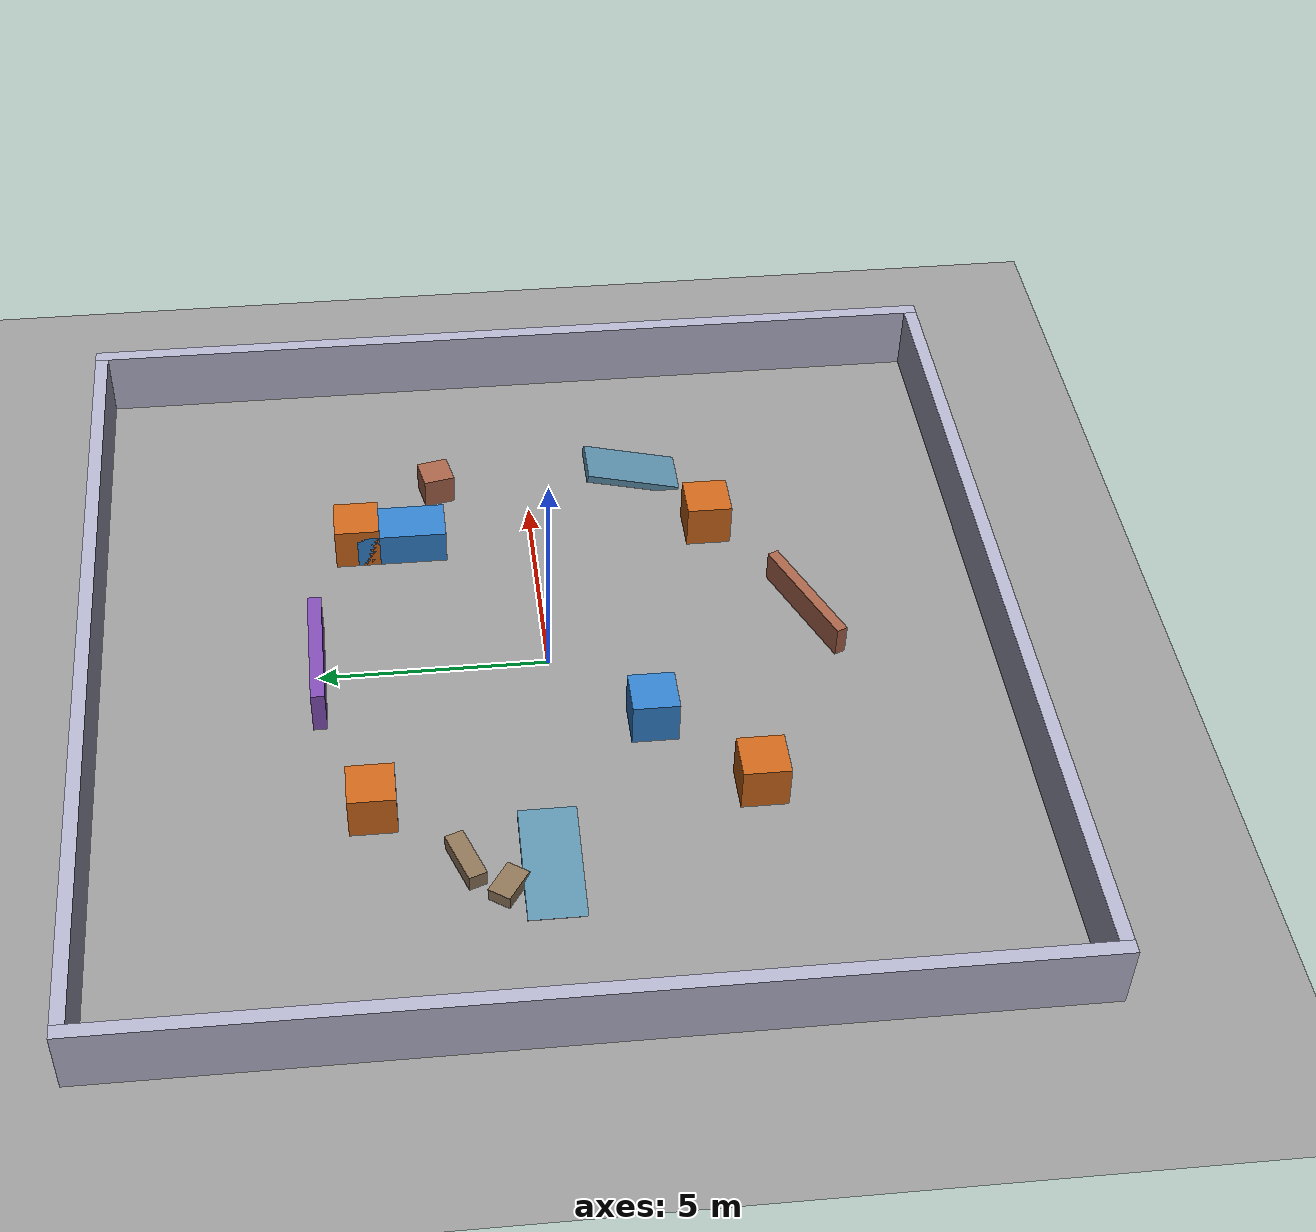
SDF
<?xml version="1.0" ?>
<sdf version="1.9">
  <world name="stage_a">

    <!-- ===== Physics ===== -->
    <physics name="1ms" type="ode">
      <max_step_size>0.001</max_step_size>
      <real_time_factor>1.0</real_time_factor>
      <real_time_update_rate>1000</real_time_update_rate>
    </physics>

    <!-- ===== Required Ignition system plugins ===== -->
    <plugin
      filename="ignition-gazebo-physics-system"
      name="ignition::gazebo::systems::Physics" />
    <plugin
      filename="ignition-gazebo-user-commands-system"
      name="ignition::gazebo::systems::UserCommands" />
    <plugin
      filename="ignition-gazebo-scene-broadcaster-system"
      name="ignition::gazebo::systems::SceneBroadcaster" />
    <plugin
      filename="ignition-gazebo-sensors-system"
      name="ignition::gazebo::systems::Sensors">
      <render_engine>ogre2</render_engine>
    </plugin>

    <!-- ===== Lighting ===== -->
    <light type="directional" name="sun">
      <cast_shadows>true</cast_shadows>
      <pose>0 0 20 0 0 0</pose>
      <diffuse>0.9 0.9 0.9 1</diffuse>
      <specular>0.3 0.3 0.3 1</specular>
      <direction>-0.5 0.2 -0.9</direction>
      <attenuation>
        <range>1000</range>
        <constant>0.9</constant>
        <linear>0.01</linear>
        <quadratic>0.001</quadratic>
      </attenuation>
    </light>
    <!-- Ambient fill: Fortress has no "ambient" light type; use a dim point light -->
    <light type="point" name="ambient_fill">
      <pose>0 0 15 0 0 0</pose>
      <diffuse>0.4 0.4 0.4 1</diffuse>
      <specular>0.1 0.1 0.1 1</specular>
      <attenuation>
        <range>50</range>
        <constant>0.9</constant>
        <linear>0.01</linear>
        <quadratic>0.001</quadratic>
      </attenuation>
      <cast_shadows>false</cast_shadows>
    </light>

    <!-- ===== Ground plane ===== -->
    <model name="ground_plane">
      <static>true</static>
      <link name="link">
        <collision name="collision">
          <geometry>
            <plane>
              <normal>0 0 1</normal>
              <size>30 30</size>
            </plane>
          </geometry>
          <surface>
            <friction>
              <ode>
                <mu>0.8</mu>
                <mu2>0.8</mu2>
              </ode>
            </friction>
          </surface>
        </collision>
        <visual name="visual">
          <geometry>
            <plane>
              <normal>0 0 1</normal>
              <size>30 30</size>
            </plane>
          </geometry>
          <material>
            <ambient>0.5 0.5 0.5 1</ambient>
            <diffuse>0.6 0.6 0.6 1</diffuse>
          </material>
        </visual>
      </link>
    </model>

    <!-- ===== Boundary walls ===== -->
    <!-- West wall  (x = -9.85) -->
    <model name="wall_west">
      <static>true</static>
      <pose>-9.85 0 0.75 0 0 0</pose>
      <link name="link">
        <collision name="collision">
          <geometry><box><size>0.30 20.0 1.5</size></box></geometry>
        </collision>
        <visual name="visual">
          <geometry><box><size>0.30 20.0 1.5</size></box></geometry>
          <material><ambient>0.7 0.7 0.8 1</ambient><diffuse>0.7 0.7 0.8 1</diffuse></material>
        </visual>
      </link>
    </model>

    <!-- East wall  (x = +9.85) -->
    <model name="wall_east">
      <static>true</static>
      <pose>9.85 0 0.75 0 0 0</pose>
      <link name="link">
        <collision name="collision">
          <geometry><box><size>0.30 20.0 1.5</size></box></geometry>
        </collision>
        <visual name="visual">
          <geometry><box><size>0.30 20.0 1.5</size></box></geometry>
          <material><ambient>0.7 0.7 0.8 1</ambient><diffuse>0.7 0.7 0.8 1</diffuse></material>
        </visual>
      </link>
    </model>

    <!-- South wall (y = -9.85) -->
    <model name="wall_south">
      <static>true</static>
      <pose>0 -9.85 0.75 0 0 0</pose>
      <link name="link">
        <collision name="collision">
          <geometry><box><size>19.40 0.30 1.5</size></box></geometry>
        </collision>
        <visual name="visual">
          <geometry><box><size>19.40 0.30 1.5</size></box></geometry>
          <material><ambient>0.7 0.7 0.8 1</ambient><diffuse>0.7 0.7 0.8 1</diffuse></material>
        </visual>
      </link>
    </model>

    <!-- North wall (y = +9.85) -->
    <model name="wall_north">
      <static>true</static>
      <pose>0 9.85 0.75 0 0 0</pose>
      <link name="link">
        <collision name="collision">
          <geometry><box><size>19.40 0.30 1.5</size></box></geometry>
        </collision>
        <visual name="visual">
          <geometry><box><size>19.40 0.30 1.5</size></box></geometry>
          <material><ambient>0.7 0.7 0.8 1</ambient><diffuse>0.7 0.7 0.8 1</diffuse></material>
        </visual>
      </link>
    </model>

    <!-- ===== Interior obstacles ===== -->
    <!-- OBS-1: 1×1×1 m box at NE -->
    <model name="obs_1">
      <static>true</static>
      <pose>4.0 4.0 0.5 0 0 0</pose>
      <link name="link">
        <collision name="collision">
          <geometry><box><size>1.0 1.0 1.0</size></box></geometry>
        </collision>
        <visual name="visual">
          <geometry><box><size>1.0 1.0 1.0</size></box></geometry>
          <material><ambient>0.8 0.4 0.1 1</ambient><diffuse>0.8 0.4 0.1 1</diffuse></material>
        </visual>
      </link>
    </model>

    <!-- OBS-2: 1×1×1 m box at NW -->
    <model name="obs_2">
      <static>true</static>
      <pose>-4.0 4.0 0.5 0 0 0</pose>
      <link name="link">
        <collision name="collision">
          <geometry><box><size>1.0 1.0 1.0</size></box></geometry>
        </collision>
        <visual name="visual">
          <geometry><box><size>1.0 1.0 1.0</size></box></geometry>
          <material><ambient>0.8 0.4 0.1 1</ambient><diffuse>0.8 0.4 0.1 1</diffuse></material>
        </visual>
      </link>
    </model>

    <!-- OBS-3: 1×1×1 m box at SE -->
    <model name="obs_3">
      <static>true</static>
      <pose>4.0 -4.0 0.5 0 0 0</pose>
      <link name="link">
        <collision name="collision">
          <geometry><box><size>1.0 1.0 1.0</size></box></geometry>
        </collision>
        <visual name="visual">
          <geometry><box><size>1.0 1.0 1.0</size></box></geometry>
          <material><ambient>0.8 0.4 0.1 1</ambient><diffuse>0.8 0.4 0.1 1</diffuse></material>
        </visual>
      </link>
    </model>

    <!-- OBS-4: 1×1×1 m box at SW -->
    <model name="obs_4">
      <static>true</static>
      <pose>-4.0 -4.0 0.5 0 0 0</pose>
      <link name="link">
        <collision name="collision">
          <geometry><box><size>1.0 1.0 1.0</size></box></geometry>
        </collision>
        <visual name="visual">
          <geometry><box><size>1.0 1.0 1.0</size></box></geometry>
          <material><ambient>0.8 0.4 0.1 1</ambient><diffuse>0.8 0.4 0.1 1</diffuse></material>
        </visual>
      </link>
    </model>

    <!-- OBS-5: 1×2×0.8 m bar — outside the x=0..5, y=-2..2 spawn corridor -->
    <model name="obs_5">
      <static>true</static>
      <pose>4.0 3.0 0.4 0 0 0</pose>
      <link name="link">
        <collision name="collision">
          <geometry><box><size>1.0 2.0 0.8</size></box></geometry>
        </collision>
        <visual name="visual">
          <geometry><box><size>1.0 2.0 0.8</size></box></geometry>
          <material><ambient>0.2 0.5 0.8 1</ambient><diffuse>0.2 0.5 0.8 1</diffuse></material>
        </visual>
      </link>
    </model>

    <!-- OBS-6: 1×1×1 m box — SW-centre -->
    <model name="obs_6">
      <static>true</static>
      <pose>-2.0 -2.0 0.5 0 0 0</pose>
      <link name="link">
        <collision name="collision">
          <geometry><box><size>1.0 1.0 1.0</size></box></geometry>
        </collision>
        <visual name="visual">
          <geometry><box><size>1.0 1.0 1.0</size></box></geometry>
          <material><ambient>0.2 0.5 0.8 1</ambient><diffuse>0.2 0.5 0.8 1</diffuse></material>
        </visual>
      </link>
    </model>

    <!-- OBS-7: 3×0.3×1 m wall segment — north corridor -->
    <model name="obs_7">
      <static>true</static>
      <pose>0.0 5.0 0.5 0 0 0</pose>
      <link name="link">
        <collision name="collision">
          <geometry><box><size>3.0 0.3 1.0</size></box></geometry>
        </collision>
        <visual name="visual">
          <geometry><box><size>3.0 0.3 1.0</size></box></geometry>
          <material><ambient>0.5 0.3 0.7 1</ambient><diffuse>0.5 0.3 0.7 1</diffuse></material>
        </visual>
      </link>
    </model>

    <!-- ===== Disaster-terrain additions ===== -->
    <!-- RAMP-1: shallow slab. Its footprint is occupied in the Stage A 2-D map. -->
    <model name="ramp_1">
      <static>true</static>
      <pose>-5.8 0.5 0.20 0 -0.26 0</pose>
      <link name="link">
        <collision name="collision">
          <geometry><box><size>2.4 1.2 0.18</size></box></geometry>
          <surface>
            <friction><ode><mu>1.0</mu><mu2>1.0</mu2></ode></friction>
          </surface>
        </collision>
        <visual name="visual">
          <geometry><box><size>2.4 1.2 0.18</size></box></geometry>
          <material><ambient>0.35 0.45 0.50 1</ambient><diffuse>0.35 0.55 0.65 1</diffuse></material>
        </visual>
      </link>
    </model>

    <!-- RAMP-2: rotated shallow slab for an alternate approach direction. -->
    <model name="ramp_2">
      <static>true</static>
      <pose>6.0 -2.5 0.20 0 -0.24 1.5708</pose>
      <link name="link">
        <collision name="collision">
          <geometry><box><size>2.2 1.1 0.18</size></box></geometry>
          <surface>
            <friction><ode><mu>1.0</mu><mu2>1.0</mu2></ode></friction>
          </surface>
        </collision>
        <visual name="visual">
          <geometry><box><size>2.2 1.1 0.18</size></box></geometry>
          <material><ambient>0.35 0.45 0.50 1</ambient><diffuse>0.35 0.55 0.65 1</diffuse></material>
        </visual>
      </link>
    </model>

    <!-- RUB-1/RUB-2: low clutter near the west side. -->
    <model name="rubble_1">
      <static>true</static>
      <pose>-5.5 2.2 0.18 0 0 0.35</pose>
      <link name="link">
        <collision name="collision"><geometry><box><size>1.2 0.4 0.36</size></box></geometry></collision>
        <visual name="visual">
          <geometry><box><size>1.2 0.4 0.36</size></box></geometry>
          <material><ambient>0.45 0.38 0.30 1</ambient><diffuse>0.55 0.45 0.34 1</diffuse></material>
        </visual>
      </link>
    </model>

    <model name="rubble_2">
      <static>true</static>
      <pose>-6.2 1.4 0.15 0 0 -0.6</pose>
      <link name="link">
        <collision name="collision"><geometry><box><size>0.8 0.5 0.30</size></box></geometry></collision>
        <visual name="visual">
          <geometry><box><size>0.8 0.5 0.30</size></box></geometry>
          <material><ambient>0.45 0.38 0.30 1</ambient><diffuse>0.55 0.45 0.34 1</diffuse></material>
        </visual>
      </link>
    </model>

    <!-- RUB-3/RUB-4: angled debris that creates a less regular corridor. -->
    <model name="rubble_3">
      <static>true</static>
      <pose>1.0 -5.8 0.35 0 0 0.4</pose>
      <link name="link">
        <collision name="collision"><geometry><box><size>2.8 0.25 0.70</size></box></geometry></collision>
        <visual name="visual">
          <geometry><box><size>2.8 0.25 0.70</size></box></geometry>
          <material><ambient>0.50 0.30 0.25 1</ambient><diffuse>0.65 0.38 0.28 1</diffuse></material>
        </visual>
      </link>
    </model>

    <model name="rubble_4">
      <static>true</static>
      <pose>5.8 2.1 0.35 0 0 0.2</pose>
      <link name="link">
        <collision name="collision"><geometry><box><size>0.7 0.7 0.70</size></box></geometry></collision>
        <visual name="visual">
          <geometry><box><size>0.7 0.7 0.70</size></box></geometry>
          <material><ambient>0.50 0.30 0.25 1</ambient><diffuse>0.65 0.38 0.28 1</diffuse></material>
        </visual>
      </link>
    </model>

  </world>
</sdf>
